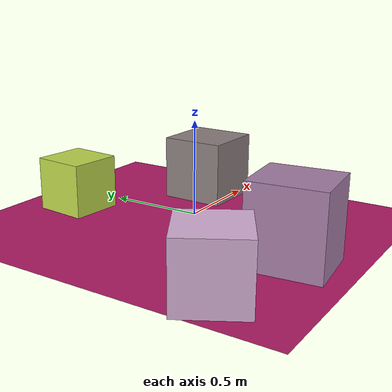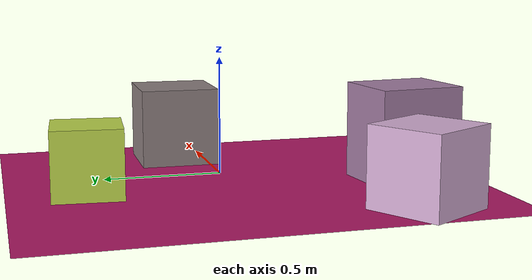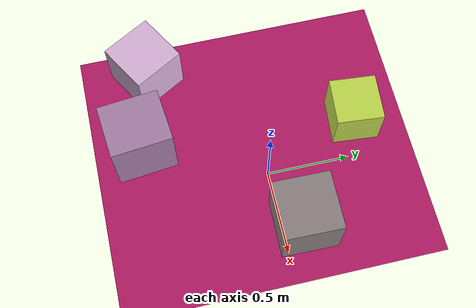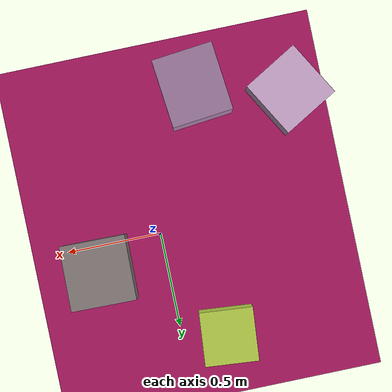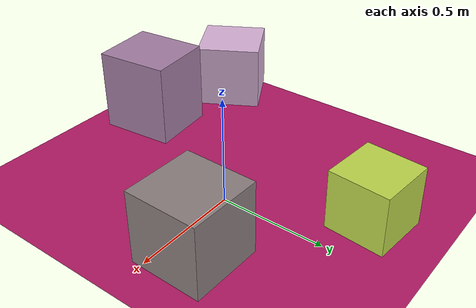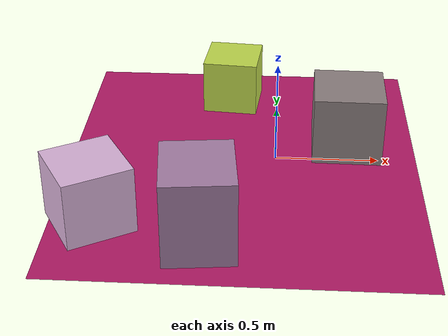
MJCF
<mujoco>
   <asset>
<texture type="skybox" builtin="gradient" rgb1="0.2 0.3 0.6" rgb2="1.0 0.3 0.9" width="500" height="500"/>
<texture name="checker_0" builtin="checker" rgb1="0.8 0.8 0.6" rgb2="0.7 0.9 0.0" width="500" height="500"/>
<texture name="checker_1" builtin="checker" rgb1="0.7 0.6 0.9" rgb2="1.0 0.8 0.8" width="500" height="500"/>
<texture name="gradient_2" builtin="gradient" rgb1="0.9 0.2 0.2" rgb2="0.2 0.8 0.8" width="500" height="500"/>
<texture name="gradient_3" builtin="gradient" rgb1="0.5 0.7 0.7" rgb2="0.8 0.3 0.6" width="500" height="500"/><material name="checker_0_mat" reflectance="0.417277673385953" texrepeat="10 10" texture="checker_0" texuniform="false" />
<material name="checker_1_mat" reflectance="0.7558158380150694" texrepeat="6 6" texture="checker_1" texuniform="false" />
<material name="gradient_2_mat" reflectance="0.3627280354684489" texture="gradient_2" texuniform="true"/>
<material name="gradient_3_mat" reflectance="0.9892804105133941" texture="gradient_3" texuniform="true"/>
   </asset>

   <worldbody>
     <geom type="plane" size="1 1 0.1" rgba="0.7 0.1 0.4 1" />
<light pos="-0.18623001460513144 0.4114063987434553 2" dir="0 0 -1" cutoff="90" diffuse="1 1 1" specular="1 1 1"/>
<light pos="-0.8570197826066674 -0.5745093928438592 2" dir="0 0 -1" cutoff="90" diffuse="1 1 1" specular="1 1 1"/>
<geom type="box" pos="-0.24 0.59 0.14" size="0.14 0.14 0.14" material="checker_0_mat" euler="0 0 85" />
<geom type="box" pos="-0.81 -0.59 0.16" size="0.16 0.16 0.16" material="checker_1_mat" euler="0 0 30" />
<geom type="box" pos="0.35 0.13 0.17" size="0.17 0.17 0.17" material="gradient_2_mat" euler="0 0 89" />
<geom type="box" pos="-0.32 -0.71 0.2" size="0.16 0.18 0.2" material="gradient_3_mat" euler="0 0 6" /><camera euler="60 0 180" fovy="60" name="camera1" pos="-0.2 -1.5 1"></camera>   </worldbody>
   <visual>
      <headlight diffuse="0.7 0.7 0.7"/>
   </visual>
</mujoco>
